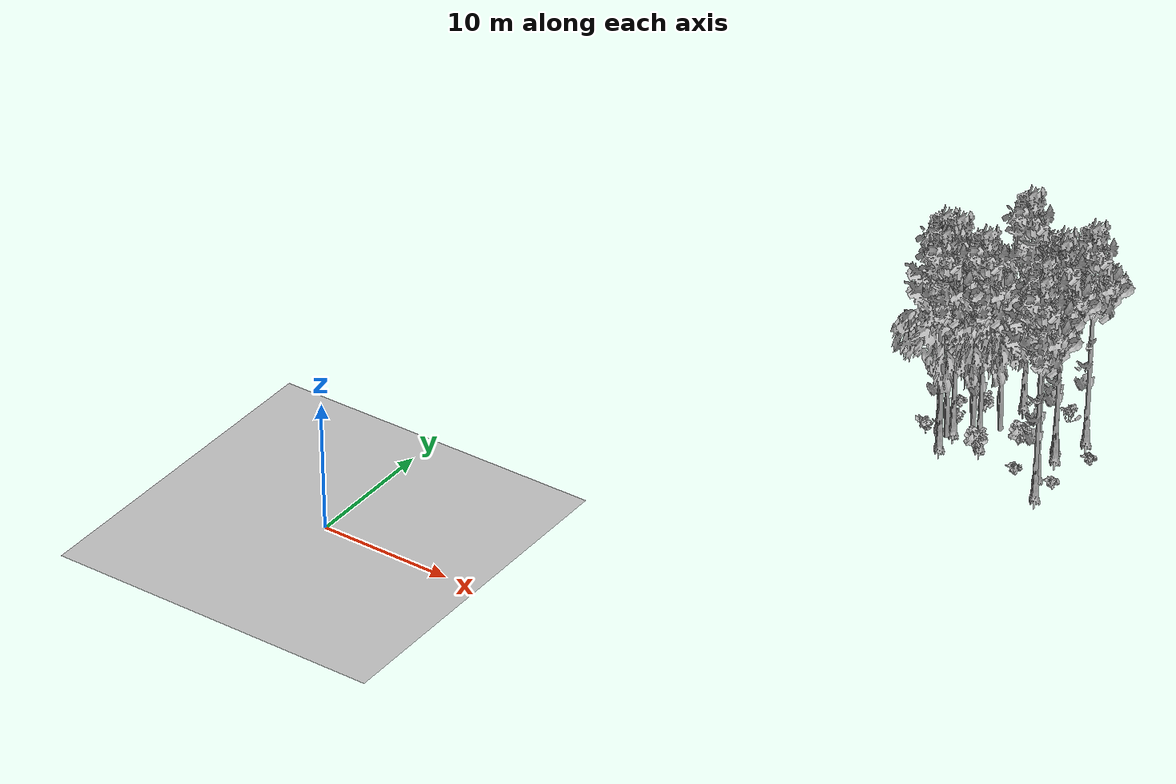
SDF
<sdf version="1.7">
 <world name="default">
  <model name="ground_plane">
   <static>1</static>
   <link name="link">
    <collision name="collision">
     <pose>-50 0 0 0 -0 0</pose>
     <geometry><plane><normal>0 0 1</normal><size>80 80</size></plane></geometry>
     <surface><contact><ode><min_depth>0.01</min_depth><max_vel>0</max_vel></ode></contact></surface>
    </collision>
    <visual name="grass">
     <cast_shadows>0</cast_shadows>
     <geometry>
      <mesh>
       <scale>0.46714285714285714 0.46714285714285714 0.1</scale>
       <uri>file://grass_plane/meshes/grass_plane.dae</uri>
      </mesh>
     </geometry>
    </visual>
   </link>
  </model>
  <model name="Tree 45">
   <static>1</static>
   <pose>36.31112130029176 32.484280784426375 0 1.57079 -0 0</pose>
   <link name="link">
    <collision name="collision">
     <geometry><mesh><scale>3.5 5 3.5</scale><uri>model://tree_9/meshes/tree_9.obj</uri></mesh></geometry>
    </collision>
    <visual name="visual">
     <geometry><mesh><scale>3.5 5 3.5</scale><uri>model://tree_9/meshes/tree_9.obj</uri></mesh></geometry>
    </visual>
   </link>
  </model>
  <model name="Tree 57">
   <static>1</static>
   <pose>31.104687290270903 39.30019373818892 0 1.57079 -0 0</pose>
   <link name="link">
    <collision name="collision">
     <geometry><mesh><scale>3.5 5 3.5</scale><uri>model://tree_9/meshes/tree_9.obj</uri></mesh></geometry>
    </collision>
    <visual name="visual">
     <geometry><mesh><scale>3.5 5 3.5</scale><uri>model://tree_9/meshes/tree_9.obj</uri></mesh></geometry>
    </visual>
   </link>
  </model>
  <model name="Tree 88">
   <static>1</static>
   <pose>35.59805565566913 36.07794027625975 0 1.57079 -0 0</pose>
   <link name="link">
    <collision name="collision">
     <geometry><mesh><scale>3.5 5 3.5</scale><uri>model://tree_9/meshes/tree_9.obj</uri></mesh></geometry>
    </collision>
    <visual name="visual">
     <geometry><mesh><scale>3.5 5 3.5</scale><uri>model://tree_9/meshes/tree_9.obj</uri></mesh></geometry>
    </visual>
   </link>
  </model>
  <model name="Tree 110">
   <static>1</static>
   <pose>31.155840001142934 33.319541672568974 0 1.57079 -0 0</pose>
   <link name="link">
    <collision name="collision">
     <geometry><mesh><scale>3.5 5 3.5</scale><uri>model://tree_9/meshes/tree_9.obj</uri></mesh></geometry>
    </collision>
    <visual name="visual">
     <geometry><mesh><scale>3.5 5 3.5</scale><uri>model://tree_9/meshes/tree_9.obj</uri></mesh></geometry>
    </visual>
   </link>
  </model>
  <model name="Tree 138">
   <static>1</static>
   <pose>28.680389977247927 33.904918836460226 0 1.57079 -0 0</pose>
   <link name="link">
    <collision name="collision">
     <geometry><mesh><scale>3.5 5 3.5</scale><uri>model://tree_9/meshes/tree_9.obj</uri></mesh></geometry>
    </collision>
    <visual name="visual">
     <geometry><mesh><scale>3.5 5 3.5</scale><uri>model://tree_9/meshes/tree_9.obj</uri></mesh></geometry>
    </visual>
   </link>
  </model>
  <model name="Tree 168">
   <static>1</static>
   <pose>28.5785059123493 33.04840262918988 0 1.57079 -0 0</pose>
   <link name="link">
    <collision name="collision">
     <geometry><mesh><scale>3.5 5 3.5</scale><uri>model://tree_2/meshes/tree_2.obj</uri></mesh></geometry>
    </collision>
    <visual name="visual">
     <geometry><mesh><scale>3.5 5 3.5</scale><uri>model://tree_2/meshes/tree_2.obj</uri></mesh></geometry>
    </visual>
   </link>
  </model>
  <model name="Tree 302">
   <static>1</static>
   <pose>29.715007264388973 34.66010028224132 0 1.57079 -0 0</pose>
   <link name="link">
    <collision name="collision">
     <geometry><mesh><scale>3.5 5 3.5</scale><uri>model://tree_2/meshes/tree_2.obj</uri></mesh></geometry>
    </collision>
    <visual name="visual">
     <geometry><mesh><scale>3.5 5 3.5</scale><uri>model://tree_2/meshes/tree_2.obj</uri></mesh></geometry>
    </visual>
   </link>
  </model>
  <model name="Tree 371">
   <static>1</static>
   <pose>36.11434776840906 35.1433823599797 0 1.57079 -0 0</pose>
   <link name="link">
    <collision name="collision">
     <geometry><mesh><scale>3.5 5 3.5</scale><uri>model://tree_9/meshes/tree_9.obj</uri></mesh></geometry>
    </collision>
    <visual name="visual">
     <geometry><mesh><scale>3.5 5 3.5</scale><uri>model://tree_9/meshes/tree_9.obj</uri></mesh></geometry>
    </visual>
   </link>
  </model>
  <model name="Tree 417">
   <static>1</static>
   <pose>27.650524581755903 33.71781138905625 0 1.57079 -0 0</pose>
   <link name="link">
    <collision name="collision">
     <geometry><mesh><scale>3.5 5 3.5</scale><uri>model://tree_9/meshes/tree_9.obj</uri></mesh></geometry>
    </collision>
    <visual name="visual">
     <geometry><mesh><scale>3.5 5 3.5</scale><uri>model://tree_9/meshes/tree_9.obj</uri></mesh></geometry>
    </visual>
   </link>
  </model>
  <model name="Tree 418">
   <static>1</static>
   <pose>37.396830093896156 30.360578098880694 0 1.57079 -0 0</pose>
   <link name="link">
    <collision name="collision">
     <geometry><mesh><scale>3.5 5 3.5</scale><uri>model://tree_9/meshes/tree_9.obj</uri></mesh></geometry>
    </collision>
    <visual name="visual">
     <geometry><mesh><scale>3.5 5 3.5</scale><uri>model://tree_9/meshes/tree_9.obj</uri></mesh></geometry>
    </visual>
   </link>
  </model>
  <model name="Tree 467">
   <static>1</static>
   <pose>31.1663968035744 35.88531794597141 0 1.57079 -0 0</pose>
   <link name="link">
    <collision name="collision">
     <geometry><mesh><scale>3.5 5 3.5</scale><uri>model://tree_2/meshes/tree_2.obj</uri></mesh></geometry>
    </collision>
    <visual name="visual">
     <geometry><mesh><scale>3.5 5 3.5</scale><uri>model://tree_2/meshes/tree_2.obj</uri></mesh></geometry>
    </visual>
   </link>
  </model>
  <model name="Tree 532">
   <static>1</static>
   <pose>28.848496793690998 31.799306766846925 0 1.57079 -0 0</pose>
   <link name="link">
    <collision name="collision">
     <geometry><mesh><scale>3.5 5 3.5</scale><uri>model://tree_9/meshes/tree_9.obj</uri></mesh></geometry>
    </collision>
    <visual name="visual">
     <geometry><mesh><scale>3.5 5 3.5</scale><uri>model://tree_9/meshes/tree_9.obj</uri></mesh></geometry>
    </visual>
   </link>
  </model>
  <model name="Tree 536">
   <static>1</static>
   <pose>36.85198109994461 38.06001932385226 0 1.57079 -0 0</pose>
   <link name="link">
    <collision name="collision">
     <geometry><mesh><scale>3.5 5 3.5</scale><uri>model://tree_9/meshes/tree_9.obj</uri></mesh></geometry>
    </collision>
    <visual name="visual">
     <geometry><mesh><scale>3.5 5 3.5</scale><uri>model://tree_9/meshes/tree_9.obj</uri></mesh></geometry>
    </visual>
   </link>
  </model>
  <model name="Bush 41">
   <static>1</static>
   <pose>34.67566810458307 39.372557646665655 0 1.57079 -0 0</pose>
   <link name="link">
    <collision name="collision">
     <geometry><mesh><scale>2 2 2</scale><uri>model://bush_4/meshes/bush_4.obj</uri></mesh></geometry>
     <surface><contact><collide_without_contact>false</collide_without_contact></contact></surface>
    </collision>
    <visual name="visual">
     <geometry><mesh><scale>2 2 2</scale><uri>model://bush_4/meshes/bush_4.obj</uri></mesh></geometry>
    </visual>
   </link>
  </model>
  <model name="Bush 94">
   <static>1</static>
   <pose>27.10206241393648 37.25248703891319 0 1.57079 -0 0</pose>
   <link name="link">
    <collision name="collision">
     <geometry><mesh><scale>2 2 2</scale><uri>model://bush_2/meshes/bush_2.obj</uri></mesh></geometry>
     <surface><contact><collide_without_contact>false</collide_without_contact></contact></surface>
    </collision>
    <visual name="visual">
     <geometry><mesh><scale>2 2 2</scale><uri>model://bush_2/meshes/bush_2.obj</uri></mesh></geometry>
    </visual>
   </link>
  </model>
  <model name="Bush 102">
   <static>1</static>
   <pose>29.071185464243698 36.76497245429505 0 1.57079 -0 0</pose>
   <link name="link">
    <collision name="collision">
     <geometry><mesh><scale>2 2 2</scale><uri>model://bush_1/meshes/bush_1.obj</uri></mesh></geometry>
     <surface><contact><collide_without_contact>false</collide_without_contact></contact></surface>
    </collision>
    <visual name="visual">
     <geometry><mesh><scale>2 2 2</scale><uri>model://bush_1/meshes/bush_1.obj</uri></mesh></geometry>
    </visual>
   </link>
  </model>
  <model name="Bush 116">
   <static>1</static>
   <pose>27.276978645089244 32.5884432397811 0 1.57079 -0 0</pose>
   <link name="link">
    <collision name="collision">
     <geometry><mesh><scale>2 2 2</scale><uri>model://bush_0/meshes/bush_0.obj</uri></mesh></geometry>
     <surface><contact><collide_without_contact>false</collide_without_contact></contact></surface>
    </collision>
    <visual name="visual">
     <geometry><mesh><scale>2 2 2</scale><uri>model://bush_0/meshes/bush_0.obj</uri></mesh></geometry>
    </visual>
   </link>
  </model>
  <model name="Bush 285">
   <static>1</static>
   <pose>38.18329611036812 36.21166354986879 0 1.57079 -0 0</pose>
   <link name="link">
    <collision name="collision">
     <geometry><mesh><scale>2 2 2</scale><uri>model://bush_2/meshes/bush_2.obj</uri></mesh></geometry>
     <surface><contact><collide_without_contact>false</collide_without_contact></contact></surface>
    </collision>
    <visual name="visual">
     <geometry><mesh><scale>2 2 2</scale><uri>model://bush_2/meshes/bush_2.obj</uri></mesh></geometry>
    </visual>
   </link>
  </model>
  <model name="Bush 367">
   <static>1</static>
   <pose>37.534048259062956 32.30201027446192 0 1.57079 -0 0</pose>
   <link name="link">
    <collision name="collision">
     <geometry><mesh><scale>2 2 2</scale><uri>model://bush_2/meshes/bush_2.obj</uri></mesh></geometry>
     <surface><contact><collide_without_contact>false</collide_without_contact></contact></surface>
    </collision>
    <visual name="visual">
     <geometry><mesh><scale>2 2 2</scale><uri>model://bush_2/meshes/bush_2.obj</uri></mesh></geometry>
    </visual>
   </link>
  </model>
  <model name="Bush 424">
   <static>1</static>
   <pose>28.4972821826171 34.66162869538762 0 1.57079 -0 0</pose>
   <link name="link">
    <collision name="collision">
     <geometry><mesh><scale>2 2 2</scale><uri>model://bush_0/meshes/bush_0.obj</uri></mesh></geometry>
     <surface><contact><collide_without_contact>false</collide_without_contact></contact></surface>
    </collision>
    <visual name="visual">
     <geometry><mesh><scale>2 2 2</scale><uri>model://bush_0/meshes/bush_0.obj</uri></mesh></geometry>
    </visual>
   </link>
  </model>
  <model name="Bush 507">
   <static>1</static>
   <pose>31.096760062050805 32.66691409651142 0 1.57079 -0 0</pose>
   <link name="link">
    <collision name="collision">
     <geometry><mesh><scale>2 2 2</scale><uri>model://bush_1/meshes/bush_1.obj</uri></mesh></geometry>
     <surface><contact><collide_without_contact>false</collide_without_contact></contact></surface>
    </collision>
    <visual name="visual">
     <geometry><mesh><scale>2 2 2</scale><uri>model://bush_1/meshes/bush_1.obj</uri></mesh></geometry>
    </visual>
   </link>
  </model>
  <model name="Bush 552">
   <static>1</static>
   <pose>34.552387415111994 32.30743660752776 0 1.57079 -0 0</pose>
   <link name="link">
    <collision name="collision">
     <geometry><mesh><scale>2 2 2</scale><uri>model://bush_2/meshes/bush_2.obj</uri></mesh></geometry>
     <surface><contact><collide_without_contact>false</collide_without_contact></contact></surface>
    </collision>
    <visual name="visual">
     <geometry><mesh><scale>2 2 2</scale><uri>model://bush_2/meshes/bush_2.obj</uri></mesh></geometry>
    </visual>
   </link>
  </model>
  <model name="Bush 575">
   <static>1</static>
   <pose>33.25816239902521 35.002942092831105 0 1.57079 -0 0</pose>
   <link name="link">
    <collision name="collision">
     <geometry><mesh><scale>2 2 2</scale><uri>model://bush_1/meshes/bush_1.obj</uri></mesh></geometry>
     <surface><contact><collide_without_contact>false</collide_without_contact></contact></surface>
    </collision>
    <visual name="visual">
     <geometry><mesh><scale>2 2 2</scale><uri>model://bush_1/meshes/bush_1.obj</uri></mesh></geometry>
    </visual>
   </link>
  </model>
 </world>
</sdf>
